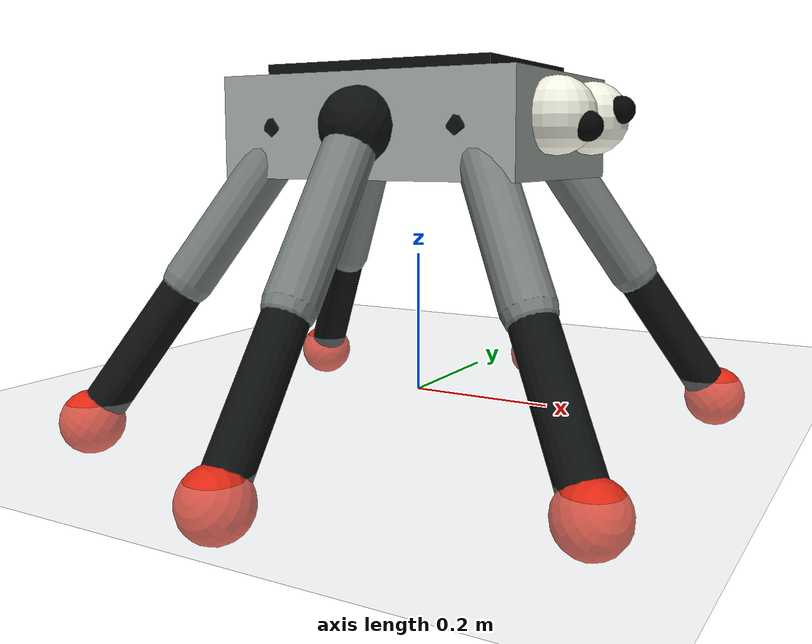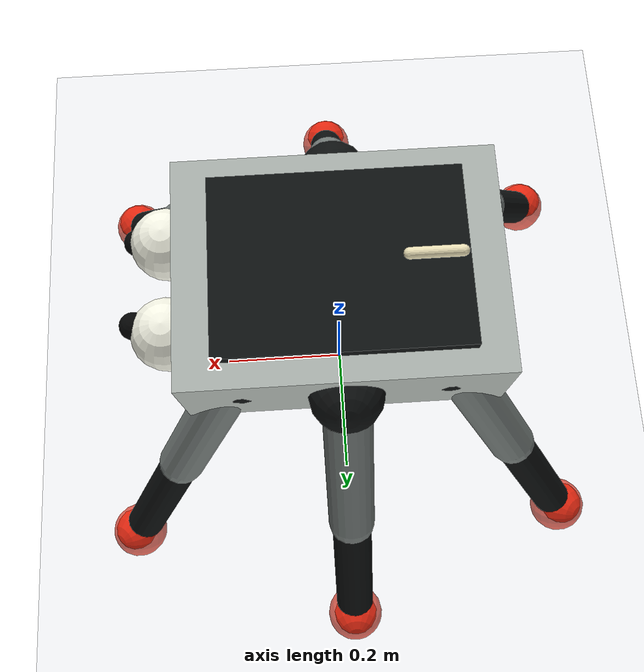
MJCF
<mujoco model="spider">
  <compiler angle="degree" autolimits="true" eulerseq="zyx"/>
  <option timestep="0.002" gravity="0 0 -9.81" integrator="implicitfast"/>

  <!-- C-1N's identity layer. Sites are render-only: they have no mass or contact. -->
  <asset>
    <material name="ceramic" rgba="0.68 0.71 0.69 1"/>
    <material name="upper_link" rgba="0.48 0.51 0.50 1"/>
    <material name="graphite" rgba="0.055 0.065 0.065 1"/>
    <material name="vermilion" rgba="0.90 0.16 0.07 1"/>
    <material name="eye_white" rgba="0.96 0.96 0.90 1"/>
    <material name="marking" rgba="0.92 0.88 0.72 1"/>
  </asset>

  <default>
    <joint damping="0.5" armature="0.01"/>
    <geom contype="1" conaffinity="1" friction="1 0.5 0.5" density="500" rgba="0.01 0.01 0.015 1"/>
  </default>

  <worldbody>
    <light name="main" pos="0 0 2" dir="0 0 -1"/>
    <geom name="ground" type="plane" size="12 12 0.1" rgba="0.91 0.925 0.945 1"/>

    <body name="torso" pos="0 0 0.38">
      <freejoint name="root"/>
      <geom name="torso_geom" type="box" size="0.22 0.16 0.07" material="ceramic" rgba="0.68 0.71 0.69 1"/>
      <site name="torso_center" pos="0 0 0" size="0.02" rgba="1 0 0 1"/>

      <!-- Googly Surveyor. Group 2 is the viewer-visible visual layer. -->
      <site name="cowl_visual" type="box" pos="0 0 0.078" size="0.17 0.125 0.009" material="graphite" rgba="0.055 0.065 0.065 1" group="2"/>
      <site name="left_eye_visual" type="sphere" pos="0.235 0.065 0.012" size="0.050" material="eye_white" rgba="0.96 0.96 0.90 1" group="2"/>
      <site name="right_eye_visual" type="sphere" pos="0.235 -0.065 0.012" size="0.050" material="eye_white" rgba="0.96 0.96 0.90 1" group="2"/>
      <site name="left_pupil_visual" type="sphere" pos="0.279 0.054 0.022" size="0.019" material="graphite" rgba="0.015 0.018 0.018 1" group="2"/>
      <site name="right_pupil_visual" type="sphere" pos="0.279 -0.076 -0.002" size="0.019" material="graphite" rgba="0.015 0.018 0.018 1" group="2"/>
      <site name="spine_visual" type="capsule" fromto="-0.16 0 0.091 -0.09 0 0.091" size="0.008" material="marking" rgba="0.92 0.88 0.72 1" group="2"/>

      <body name="front_left" pos="0.14 0.11 0" euler="38 55 0">
        <joint name="front_left_coxa" type="hinge" axis="0 0 1" range="-45 45"/>
        <joint name="front_left_hip" type="hinge" axis="0 1 0" range="-45 45"/>
        <geom name="front_left_thigh" type="capsule" fromto="0 0 0 0.26 0 0" size="0.035" material="upper_link" rgba="0.48 0.51 0.50 1"/>
        <site name="front_left_joint_visual" type="sphere" size="0.052" material="graphite" rgba="0.055 0.065 0.065 1" group="2"/>
        <body name="front_left_shin" pos="0.26 0 0">
          <joint name="front_left_knee" type="hinge" axis="0 1 0" range="-80 80"/>
          <geom name="front_left_shin_geom" type="capsule" fromto="0 0 0 0.24 0 0" size="0.03" material="graphite" rgba="0.055 0.065 0.065 1"/>
          <geom name="front_left_foot" type="sphere" pos="0.24 0 0" size="0.045" material="vermilion" rgba="0.90 0.16 0.07 1"/>
          <site name="front_left_contact_site" pos="0.24 0 0" size="0.02"/>
        </body>
      </body>

      <body name="front_right" pos="0.14 -0.11 0" euler="-38 55 0">
        <joint name="front_right_coxa" type="hinge" axis="0 0 1" range="-45 45"/>
        <joint name="front_right_hip" type="hinge" axis="0 1 0" range="-45 45"/>
        <geom name="front_right_thigh" type="capsule" fromto="0 0 0 0.26 0 0" size="0.035" material="upper_link" rgba="0.48 0.51 0.50 1"/>
        <site name="front_right_joint_visual" type="sphere" size="0.052" material="graphite" rgba="0.055 0.065 0.065 1" group="2"/>
        <body name="front_right_shin" pos="0.26 0 0">
          <joint name="front_right_knee" type="hinge" axis="0 1 0" range="-80 80"/>
          <geom name="front_right_shin_geom" type="capsule" fromto="0 0 0 0.24 0 0" size="0.03" material="graphite" rgba="0.055 0.065 0.065 1"/>
          <geom name="front_right_foot" type="sphere" pos="0.24 0 0" size="0.045" material="vermilion" rgba="0.90 0.16 0.07 1"/>
          <site name="front_right_contact_site" pos="0.24 0 0" size="0.02"/>
        </body>
      </body>

      <body name="middle_left" pos="0 0.16 0" euler="90 55 0">
        <joint name="middle_left_coxa" type="hinge" axis="0 0 1" range="-45 45"/>
        <joint name="middle_left_hip" type="hinge" axis="0 1 0" range="-45 45"/>
        <geom name="middle_left_thigh" type="capsule" fromto="0 0 0 0.26 0 0" size="0.035" material="upper_link" rgba="0.48 0.51 0.50 1"/>
        <site name="middle_left_joint_visual" type="sphere" size="0.052" material="graphite" rgba="0.055 0.065 0.065 1" group="2"/>
        <body name="middle_left_shin" pos="0.26 0 0">
          <joint name="middle_left_knee" type="hinge" axis="0 1 0" range="-80 80"/>
          <geom name="middle_left_shin_geom" type="capsule" fromto="0 0 0 0.24 0 0" size="0.03" material="graphite" rgba="0.055 0.065 0.065 1"/>
          <geom name="middle_left_foot" type="sphere" pos="0.24 0 0" size="0.045" material="vermilion" rgba="0.90 0.16 0.07 1"/>
          <site name="middle_left_contact_site" pos="0.24 0 0" size="0.02"/>
        </body>
      </body>

      <body name="middle_right" pos="0 -0.16 0" euler="-90 55 0">
        <joint name="middle_right_coxa" type="hinge" axis="0 0 1" range="-45 45"/>
        <joint name="middle_right_hip" type="hinge" axis="0 1 0" range="-45 45"/>
        <geom name="middle_right_thigh" type="capsule" fromto="0 0 0 0.26 0 0" size="0.035" material="upper_link" rgba="0.48 0.51 0.50 1"/>
        <site name="middle_right_joint_visual" type="sphere" size="0.052" material="graphite" rgba="0.055 0.065 0.065 1" group="2"/>
        <body name="middle_right_shin" pos="0.26 0 0">
          <joint name="middle_right_knee" type="hinge" axis="0 1 0" range="-80 80"/>
          <geom name="middle_right_shin_geom" type="capsule" fromto="0 0 0 0.24 0 0" size="0.03" material="graphite" rgba="0.055 0.065 0.065 1"/>
          <geom name="middle_right_foot" type="sphere" pos="0.24 0 0" size="0.045" material="vermilion" rgba="0.90 0.16 0.07 1"/>
          <site name="middle_right_contact_site" pos="0.24 0 0" size="0.02"/>
        </body>
      </body>

      <body name="rear_left" pos="-0.14 0.11 0" euler="142 55 0">
        <joint name="rear_left_coxa" type="hinge" axis="0 0 1" range="-45 45"/>
        <joint name="rear_left_hip" type="hinge" axis="0 1 0" range="-45 45"/>
        <geom name="rear_left_thigh" type="capsule" fromto="0 0 0 0.26 0 0" size="0.035" material="upper_link" rgba="0.48 0.51 0.50 1"/>
        <site name="rear_left_joint_visual" type="sphere" size="0.052" material="graphite" rgba="0.055 0.065 0.065 1" group="2"/>
        <body name="rear_left_shin" pos="0.26 0 0">
          <joint name="rear_left_knee" type="hinge" axis="0 1 0" range="-80 80"/>
          <geom name="rear_left_shin_geom" type="capsule" fromto="0 0 0 0.24 0 0" size="0.03" material="graphite" rgba="0.055 0.065 0.065 1"/>
          <geom name="rear_left_foot" type="sphere" pos="0.24 0 0" size="0.045" material="vermilion" rgba="0.90 0.16 0.07 1"/>
          <site name="rear_left_contact_site" pos="0.24 0 0" size="0.02"/>
        </body>
      </body>

      <body name="rear_right" pos="-0.14 -0.11 0" euler="-142 55 0">
        <joint name="rear_right_coxa" type="hinge" axis="0 0 1" range="-45 45"/>
        <joint name="rear_right_hip" type="hinge" axis="0 1 0" range="-45 45"/>
        <geom name="rear_right_thigh" type="capsule" fromto="0 0 0 0.26 0 0" size="0.035" material="upper_link" rgba="0.48 0.51 0.50 1"/>
        <site name="rear_right_joint_visual" type="sphere" size="0.052" material="graphite" rgba="0.055 0.065 0.065 1" group="2"/>
        <body name="rear_right_shin" pos="0.26 0 0">
          <joint name="rear_right_knee" type="hinge" axis="0 1 0" range="-80 80"/>
          <geom name="rear_right_shin_geom" type="capsule" fromto="0 0 0 0.24 0 0" size="0.03" material="graphite" rgba="0.055 0.065 0.065 1"/>
          <geom name="rear_right_foot" type="sphere" pos="0.24 0 0" size="0.045" material="vermilion" rgba="0.90 0.16 0.07 1"/>
          <site name="rear_right_contact_site" pos="0.24 0 0" size="0.02"/>
        </body>
      </body>
    </body>
  </worldbody>

  <actuator>
    <position name="front_left_coxa_motor" joint="front_left_coxa" kp="300" ctrlrange="-0.8 0.8"/>
    <position name="front_left_hip_motor" joint="front_left_hip" kp="300" ctrlrange="-0.8 0.8"/>
    <position name="front_left_knee_motor" joint="front_left_knee" kp="300" ctrlrange="-1.4 1.4"/>
    <position name="front_right_coxa_motor" joint="front_right_coxa" kp="300" ctrlrange="-0.8 0.8"/>
    <position name="front_right_hip_motor" joint="front_right_hip" kp="300" ctrlrange="-0.8 0.8"/>
    <position name="front_right_knee_motor" joint="front_right_knee" kp="300" ctrlrange="-1.4 1.4"/>
    <position name="middle_left_coxa_motor" joint="middle_left_coxa" kp="300" ctrlrange="-0.8 0.8"/>
    <position name="middle_left_hip_motor" joint="middle_left_hip" kp="300" ctrlrange="-0.8 0.8"/>
    <position name="middle_left_knee_motor" joint="middle_left_knee" kp="300" ctrlrange="-1.4 1.4"/>
    <position name="middle_right_coxa_motor" joint="middle_right_coxa" kp="300" ctrlrange="-0.8 0.8"/>
    <position name="middle_right_hip_motor" joint="middle_right_hip" kp="300" ctrlrange="-0.8 0.8"/>
    <position name="middle_right_knee_motor" joint="middle_right_knee" kp="300" ctrlrange="-1.4 1.4"/>
    <position name="rear_left_coxa_motor" joint="rear_left_coxa" kp="300" ctrlrange="-0.8 0.8"/>
    <position name="rear_left_hip_motor" joint="rear_left_hip" kp="300" ctrlrange="-0.8 0.8"/>
    <position name="rear_left_knee_motor" joint="rear_left_knee" kp="300" ctrlrange="-1.4 1.4"/>
    <position name="rear_right_coxa_motor" joint="rear_right_coxa" kp="300" ctrlrange="-0.8 0.8"/>
    <position name="rear_right_hip_motor" joint="rear_right_hip" kp="300" ctrlrange="-0.8 0.8"/>
    <position name="rear_right_knee_motor" joint="rear_right_knee" kp="300" ctrlrange="-1.4 1.4"/>
  </actuator>

  <sensor>
    <framequat name="torso_orientation" objtype="body" objname="torso"/>
    <framelinvel name="torso_velocity" objtype="body" objname="torso"/>
    <touch name="front_left_contact" site="front_left_contact_site"/>
    <touch name="front_right_contact" site="front_right_contact_site"/>
    <touch name="middle_left_contact" site="middle_left_contact_site"/>
    <touch name="middle_right_contact" site="middle_right_contact_site"/>
    <touch name="rear_left_contact" site="rear_left_contact_site"/>
    <touch name="rear_right_contact" site="rear_right_contact_site"/>
  </sensor>
</mujoco>
